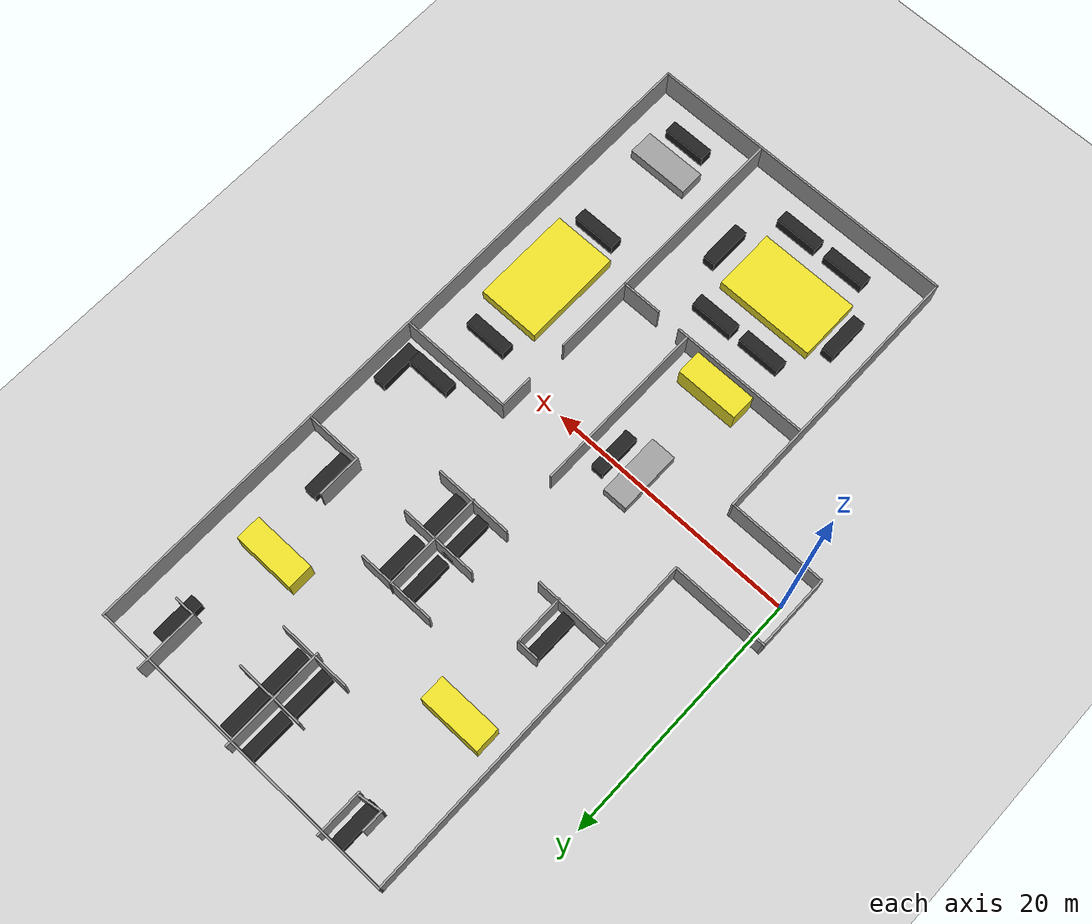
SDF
<sdf version="1.6">
 <world name="default">
  <light name="sun" type="directional">
   <pose>0 0 10 0 -0 0</pose>
   <diffuse>0.8 0.8 0.8 1</diffuse>
   <specular>0.2 0.2 0.2 1</specular>
   <attenuation>
    <range>1000</range>
    <constant>0.9</constant>
    <linear>0.01</linear>
    <quadratic>0.001</quadratic>
   </attenuation>
   <direction>-0.5 0.1 -0.9</direction>
  </light>
  <model name="ground_plane">
   <static>1</static>
   <link name="link">
    <collision name="collision">
     <geometry><plane><normal>0 0 1</normal><size>100 100</size></plane></geometry>
     <surface>
      <contact><collide_bitmask>65535</collide_bitmask></contact>
      <friction><ode><mu>100</mu><mu2>50</mu2></ode></friction>
     </surface>
    </collision>
    <visual name="visual">
     <cast_shadows>0</cast_shadows>
     <geometry><plane><normal>0 0 1</normal><size>100 100</size></plane></geometry>
     <material>
      <script><uri>file://media/materials/scripts/gazebo.material</uri><name>Gazebo/Grey</name></script>
     </material>
    </visual>
   </link>
  </model>
  <gravity>0 0 -9.8</gravity>
  <magnetic_field>6e-06 2.3e-05 -4.2e-05</magnetic_field>
  <atmosphere type="adiabatic"/>
  <physics name="default_physics" default="0" type="ode">
   <max_step_size>0.001</max_step_size>
   <real_time_factor>1</real_time_factor>
   <real_time_update_rate>1000</real_time_update_rate>
  </physics>
  <scene><ambient>0.4 0.4 0.4 1</ambient><background>0.7 0.7 0.7 1</background><shadows>1</shadows></scene>
  <audio><device>default</device></audio>
  <spherical_coordinates>
   <surface_model>EARTH_WGS84</surface_model>
   <latitude_deg>0</latitude_deg>
   <longitude_deg>0</longitude_deg>
   <elevation>0</elevation>
   <heading_deg>0</heading_deg>
  </spherical_coordinates>
  <model name="office_1">
   <pose>15.4743 3.41032 0 0 -0 0</pose>
   <link name="Wall_0">
    <collision name="Wall_0_Collision">
     <geometry><box><size>7.75 0.15 2.5</size></box></geometry>
     <pose>0 0 1.25 0 -0 0</pose>
    </collision>
    <visual name="Wall_0_Visual">
     <pose>0 0 1.25 0 -0 0</pose>
     <geometry><box><size>7.75 0.15 2.5</size></box></geometry>
     <material>
      <script><uri>file://media/materials/scripts/gazebo.material</uri><name>Gazebo/Grey</name></script>
      <ambient>1 1 1 1</ambient>
     </material>
     <meta><layer>0</layer></meta>
    </visual>
    <pose>-12.5043 -5.95032 0 0 -0 0</pose>
   </link>
   <link name="Wall_10">
    <collision name="Wall_10_Collision">
     <geometry><box><size>6 0.15 2.5</size></box></geometry>
     <pose>0 0 1.25 0 -0 0</pose>
    </collision>
    <visual name="Wall_10_Visual">
     <pose>0 0 1.25 0 -0 0</pose>
     <geometry><box><size>6 0.15 2.5</size></box></geometry>
     <material>
      <script><uri>file://media/materials/scripts/gazebo.material</uri><name>Gazebo/Grey</name></script>
      <ambient>1 1 1 1</ambient>
     </material>
     <meta><layer>0</layer></meta>
    </visual>
    <pose>-16.3956 -3.00177 0 0 -0 -1.5708</pose>
   </link>
   <link name="Wall_2">
    <collision name="Wall_2_Collision">
     <geometry><box><size>22 0.15 2.5</size></box></geometry>
     <pose>0 0 1.25 0 -0 0</pose>
    </collision>
    <visual name="Wall_2_Visual">
     <pose>0 0 1.25 0 -0 0</pose>
     <geometry><box><size>22 0.15 2.5</size></box></geometry>
     <material>
      <script><uri>file://media/materials/scripts/gazebo.material</uri><name>Gazebo/Grey</name></script>
      <ambient>1 1 1 1</ambient>
     </material>
     <meta><layer>0</layer></meta>
    </visual>
    <pose>-8.70435 -16.8753 0 0 -0 -1.5708</pose>
   </link>
   <link name="Wall_3">
    <collision name="Wall_3_Collision">
     <geometry><box><size>25.25 0.15 2.5</size></box></geometry>
     <pose>0 0 1.25 0 -0 0</pose>
    </collision>
    <visual name="Wall_3_Visual">
     <pose>0 0 1.25 0 -0 0</pose>
     <geometry><box><size>25.25 0.15 2.5</size></box></geometry>
     <material>
      <script><uri>file://media/materials/scripts/gazebo.material</uri><name>Gazebo/Grey</name></script>
      <ambient>1 1 1 1</ambient>
     </material>
     <meta><layer>0</layer></meta>
    </visual>
    <pose>3.84565 -27.8003 0 0 -0 0</pose>
   </link>
   <link name="Wall_5">
    <collision name="Wall_5_Collision">
     <geometry><box><size>55.75 0.15 2.5</size></box></geometry>
     <pose>0 0 1.25 0 -0 0</pose>
    </collision>
    <visual name="Wall_5_Visual">
     <pose>0 0 1.25 0 -0 0</pose>
     <geometry><box><size>55.75 0.15 2.5</size></box></geometry>
     <material>
      <script><uri>file://media/materials/scripts/gazebo.material</uri><name>Gazebo/Grey</name></script>
      <ambient>1 1 1 1</ambient>
     </material>
     <meta><layer>0</layer></meta>
    </visual>
    <pose>16.3957 -0.000322 0 0 -0 1.5708</pose>
   </link>
   <link name="Wall_6">
    <collision name="Wall_6_Collision">
     <geometry><box><size>25.5 0.15 2.5</size></box></geometry>
     <pose>0 0 1.25 0 -0 0</pose>
    </collision>
    <visual name="Wall_6_Visual">
     <pose>0 0 1.25 0 -0 0</pose>
     <geometry><box><size>25.5 0.15 2.5</size></box></geometry>
     <material>
      <script><uri>file://media/materials/scripts/gazebo.material</uri><name>Gazebo/Grey</name></script>
      <ambient>1 1 1 1</ambient>
     </material>
     <meta><layer>0</layer></meta>
    </visual>
    <pose>3.72065 27.7997 0 0 -0 3.14159</pose>
   </link>
   <link name="Wall_7">
    <collision name="Wall_7_Collision">
     <geometry><box><size>28.0269 0.15 2.5</size></box></geometry>
     <pose>0 0 1.25 0 -0 0</pose>
    </collision>
    <visual name="Wall_7_Visual">
     <pose>0 0 1.25 0 -0 0</pose>
     <geometry><box><size>28.0269 0.15 2.5</size></box></geometry>
     <material>
      <script><uri>file://media/materials/scripts/gazebo.material</uri><name>Gazebo/Grey</name></script>
      <ambient>1 1 1 1</ambient>
     </material>
     <meta><layer>0</layer></meta>
    </visual>
    <pose>-8.88935 13.8617 0 0 -0 -1.56613</pose>
   </link>
   <link name="Wall_8">
    <collision name="Wall_8_Collision">
     <geometry><box><size>7.7213 0.15 2.5</size></box></geometry>
     <pose>0 0 1.25 0 -0 0</pose>
    </collision>
    <visual name="Wall_8_Visual">
     <pose>0 0 1.25 0 -0 0</pose>
     <geometry><box><size>7.7213 0.15 2.5</size></box></geometry>
     <material>
      <script><uri>file://media/materials/scripts/gazebo.material</uri><name>Gazebo/Grey</name></script>
      <ambient>1 1 1 1</ambient>
     </material>
     <meta><layer>0</layer></meta>
    </visual>
    <pose>-12.61 -0.076547 0 0 -0 -3.14153</pose>
   </link>
   <static>1</static>
  </model>
  <model name="office_2">
   <pose>19.223 3.91729 0 0 -0 0</pose>
   <link name="Wall_11">
    <collision name="Wall_11_Collision">
     <geometry><box><size>6.5 0.15 2.5</size></box></geometry>
     <pose>0 0 1.25 0 -0 0</pose>
    </collision>
    <visual name="Wall_11_Visual">
     <pose>0 0 1.25 0 -0 0</pose>
     <geometry><box><size>6.5 0.15 2.5</size></box></geometry>
     <material>
      <script><uri>file://media/materials/scripts/gazebo.material</uri><name>Gazebo/Grey</name></script>
      <ambient>1 1 1 1</ambient>
     </material>
     <meta><layer>0</layer></meta>
    </visual>
    <pose>3.61683 -10.3722 0 0 -0 1.5708</pose>
   </link>
   <link name="Wall_13">
    <collision name="Wall_13_Collision">
     <geometry><box><size>2.75 0.15 2.5</size></box></geometry>
     <pose>0 0 1.25 0 -0 0</pose>
    </collision>
    <visual name="Wall_13_Visual">
     <pose>0 0 1.25 0 -0 0</pose>
     <geometry><box><size>2.75 0.15 2.5</size></box></geometry>
     <material>
      <script><uri>file://media/materials/scripts/gazebo.material</uri><name>Gazebo/Grey</name></script>
      <ambient>1 1 1 1</ambient>
     </material>
     <meta><layer>0</layer></meta>
    </visual>
    <pose>3.64403 -2.41016 0 0 -0 1.5708</pose>
   </link>
   <link name="Wall_14">
    <collision name="Wall_14_Collision">
     <geometry><box><size>9 0.15 2.5</size></box></geometry>
     <pose>0 0 1.25 0 -0 0</pose>
    </collision>
    <visual name="Wall_14_Visual">
     <pose>0 0 1.25 0 -0 0</pose>
     <geometry><box><size>9 0.15 2.5</size></box></geometry>
     <material>
      <script><uri>file://media/materials/scripts/gazebo.material</uri><name>Gazebo/Grey</name></script>
      <ambient>1 1 1 1</ambient>
     </material>
     <meta><layer>0</layer></meta>
    </visual>
    <pose>8.06904 -1.11016 0 0 -0 0</pose>
   </link>
   <link name="Wall_20">
    <collision name="Wall_20_Collision">
     <geometry><box><size>14 0.15 2.5</size></box></geometry>
     <pose>0 0 1.25 0 -0 0</pose>
    </collision>
    <visual name="Wall_20_Visual">
     <pose>0 0 1.25 0 -0 0</pose>
     <geometry><box><size>14 0.15 2.5</size></box></geometry>
     <material>
      <script><uri>file://media/materials/scripts/gazebo.material</uri><name>Gazebo/Grey</name></script>
      <ambient>1 1 1 1</ambient>
     </material>
     <meta><layer>0</layer></meta>
    </visual>
    <pose>-2.23045 -6.54514 0 0 -0 1.5708</pose>
   </link>
   <link name="Wall_29">
    <collision name="Wall_29_Collision">
     <geometry><box><size>6 0.15 2.5</size></box></geometry>
     <pose>0 0 1.25 0 -0 0</pose>
    </collision>
    <visual name="Wall_29_Visual">
     <pose>0 0 1.25 0 -0 0</pose>
     <geometry><box><size>6 0.15 2.5</size></box></geometry>
     <material>
      <script><uri>file://media/materials/scripts/gazebo.material</uri><name>Gazebo/Grey</name></script>
      <ambient>1 1 1 1</ambient>
     </material>
     <meta><layer>0</layer></meta>
    </visual>
    <pose>-9.61448 6.29314 0 0 -0 0</pose>
   </link>
   <link name="Wall_3">
    <collision name="Wall_3_Collision">
     <geometry><box><size>11 0.15 2.5</size></box></geometry>
     <pose>0 0 1.25 0 -0 0</pose>
    </collision>
    <visual name="Wall_3_Visual">
     <pose>0 0 1.25 0 -0 0</pose>
     <geometry><box><size>11 0.15 2.5</size></box></geometry>
     <material>
      <script><uri>file://media/materials/scripts/gazebo.material</uri><name>Gazebo/Grey</name></script>
      <ambient>1 1 1 1</ambient>
     </material>
     <meta><layer>0</layer></meta>
    </visual>
    <pose>-6.89347 -13.5267 0 0 -0 0</pose>
   </link>
   <link name="Wall_32">
    <collision name="Wall_32_Collision">
     <geometry><box><size>4 0.15 2.5</size></box></geometry>
     <pose>0 0 1.25 0 -0 0</pose>
    </collision>
    <visual name="Wall_32_Visual">
     <pose>0 0 1.25 0 -0 0</pose>
     <geometry><box><size>4 0.15 2.5</size></box></geometry>
     <material>
      <script><uri>file://media/materials/scripts/gazebo.material</uri><name>Gazebo/Grey</name></script>
      <ambient>1 1 1 1</ambient>
     </material>
     <meta><layer>0</layer></meta>
    </visual>
    <pose>-8.37317 8.17348 0 0 -0 1.5708</pose>
   </link>
   <link name="Wall_33">
    <collision name="Wall_33_Collision">
     <geometry><box><size>1.75 0.15 2.5</size></box></geometry>
     <pose>0 0 1.25 0 -0 0</pose>
    </collision>
    <visual name="Wall_33_Visual">
     <pose>0 0 1.25 0 -0 0</pose>
     <geometry><box><size>1.75 0.15 2.5</size></box></geometry>
     <material>
      <script><uri>file://media/materials/scripts/gazebo.material</uri><name>Gazebo/Grey</name></script>
      <ambient>1 1 1 1</ambient>
     </material>
     <meta><layer>0</layer></meta>
    </visual>
    <pose>-9.17316 10.0985 0 0 -0 3.14159</pose>
   </link>
   <link name="Wall_47">
    <collision name="Wall_47_Collision">
     <geometry><box><size>3.75 0.15 2.5</size></box></geometry>
     <pose>0 0 1.25 0 -0 0</pose>
    </collision>
    <visual name="Wall_47_Visual">
     <pose>0 0 1.25 0 -0 0</pose>
     <geometry><box><size>3.75 0.15 2.5</size></box></geometry>
     <material>
      <script><uri>file://media/materials/scripts/gazebo.material</uri><name>Gazebo/Grey</name></script>
      <ambient>1 1 1 1</ambient>
     </material>
     <meta><layer>0</layer></meta>
    </visual>
    <pose>-7.63999 25.7901 0 0 -0 -1.5708</pose>
   </link>
   <link name="Wall_48">
    <collision name="Wall_48_Collision">
     <geometry><box><size>2.05601 0.15 2.5</size></box></geometry>
     <pose>0 0 1.25 0 -0 0</pose>
    </collision>
    <visual name="Wall_48_Visual">
     <pose>0 0 1.25 0 -0 0</pose>
     <geometry><box><size>2.05601 0.15 2.5</size></box></geometry>
     <material>
      <script><uri>file://media/materials/scripts/gazebo.material</uri><name>Gazebo/Grey</name></script>
      <ambient>1 1 1 1</ambient>
     </material>
     <meta><layer>0</layer></meta>
    </visual>
    <pose>-8.5823 23.9901 0 0 -0 -2.9917</pose>
   </link>
   <link name="Wall_49">
    <collision name="Wall_49_Collision">
     <geometry><box><size>1.75 0.15 2.5</size></box></geometry>
     <pose>0 0 1.25 0 -0 0</pose>
    </collision>
    <visual name="Wall_49_Visual">
     <pose>0 0 1.25 0 -0 0</pose>
     <geometry><box><size>1.75 0.15 2.5</size></box></geometry>
     <material>
      <script><uri>file://media/materials/scripts/gazebo.material</uri><name>Gazebo/Grey</name></script>
      <ambient>1 1 1 1</ambient>
     </material>
     <meta><layer>0</layer></meta>
    </visual>
    <pose>-9.52462 24.6478 0 0 -0 1.5708</pose>
   </link>
   <link name="Wall_57">
    <collision name="Wall_57_Collision">
     <geometry><box><size>5 0.15 2.5</size></box></geometry>
     <pose>0 0 1.25 0 -0 0</pose>
    </collision>
    <visual name="Wall_57_Visual">
     <pose>0 0 1.25 0 -0 0</pose>
     <geometry><box><size>5 0.15 2.5</size></box></geometry>
     <material>
      <script><uri>file://media/materials/scripts/gazebo.material</uri><name>Gazebo/Grey</name></script>
      <ambient>1 1 1 1</ambient>
     </material>
     <meta><layer>0</layer></meta>
    </visual>
    <pose>8.35473 25.7222 0 0 -0 -1.5708</pose>
   </link>
   <link name="Wall_58">
    <collision name="Wall_58_Collision">
     <geometry><box><size>1.75 0.15 2.5</size></box></geometry>
     <pose>0 0 1.25 0 -0 0</pose>
    </collision>
    <visual name="Wall_58_Visual">
     <pose>0 0 1.25 0 -0 0</pose>
     <geometry><box><size>1.75 0.15 2.5</size></box></geometry>
     <material>
      <script><uri>file://media/materials/scripts/gazebo.material</uri><name>Gazebo/Grey</name></script>
      <ambient>1 1 1 1</ambient>
     </material>
     <meta><layer>0</layer></meta>
    </visual>
    <pose>9.15472 23.2972 0 0 -0 0</pose>
   </link>
   <link name="Wall_60">
    <collision name="Wall_60_Collision">
     <geometry><box><size>8.25 0.15 2.5</size></box></geometry>
     <pose>0 0 1.25 0 -0 0</pose>
    </collision>
    <visual name="Wall_60_Visual">
     <pose>0 0 1.25 0 -0 0</pose>
     <geometry><box><size>8.25 0.15 2.5</size></box></geometry>
     <material>
      <script><uri>file://media/materials/scripts/gazebo.material</uri><name>Gazebo/Grey</name></script>
      <ambient>1 1 1 1</ambient>
     </material>
     <meta><layer>0</layer></meta>
    </visual>
    <pose>0.578927 23.6502 0 0 -0 -1.5708</pose>
   </link>
   <link name="Wall_65">
    <collision name="Wall_65_Collision">
     <geometry><box><size>5.75 0.15 2.5</size></box></geometry>
     <pose>0 0 1.25 0 -0 0</pose>
    </collision>
    <visual name="Wall_65_Visual">
     <pose>0 0 1.25 0 -0 0</pose>
     <geometry><box><size>5.75 0.15 2.5</size></box></geometry>
     <material>
      <script><uri>file://media/materials/scripts/gazebo.material</uri><name>Gazebo/Grey</name></script>
      <ambient>1 1 1 1</ambient>
     </material>
     <meta><layer>0</layer></meta>
    </visual>
    <pose>0.659823 19.8318 0 0 -0 0</pose>
   </link>
   <link name="Wall_69">
    <collision name="Wall_69_Collision">
     <geometry><box><size>5.5 0.15 2.5</size></box></geometry>
     <pose>0 0 1.25 0 -0 0</pose>
    </collision>
    <visual name="Wall_69_Visual">
     <pose>0 0 1.25 0 -0 0</pose>
     <geometry><box><size>5.5 0.15 2.5</size></box></geometry>
     <material>
      <script><uri>file://media/materials/scripts/gazebo.material</uri><name>Gazebo/Grey</name></script>
      <ambient>1 1 1 1</ambient>
     </material>
     <meta><layer>0</layer></meta>
    </visual>
    <pose>0.961778 23.5321 0 0 -0 0</pose>
   </link>
   <link name="Wall_71">
    <collision name="Wall_71_Collision">
     <geometry><box><size>8 0.15 2.5</size></box></geometry>
     <pose>0 0 1.25 0 -0 0</pose>
    </collision>
    <visual name="Wall_71_Visual">
     <pose>0 0 1.25 0 -0 0</pose>
     <geometry><box><size>8 0.15 2.5</size></box></geometry>
     <material>
      <script><uri>file://media/materials/scripts/gazebo.material</uri><name>Gazebo/Grey</name></script>
      <ambient>1 1 1 1</ambient>
     </material>
     <meta><layer>0</layer></meta>
    </visual>
    <pose>0.422198 9.09895 0 0 -0 -1.5708</pose>
   </link>
   <link name="Wall_73">
    <collision name="Wall_73_Collision">
     <geometry><box><size>6.25 0.15 2.5</size></box></geometry>
     <pose>0 0 1.25 0 -0 0</pose>
    </collision>
    <visual name="Wall_73_Visual">
     <pose>0 0 1.25 0 -0 0</pose>
     <geometry><box><size>6.25 0.15 2.5</size></box></geometry>
     <material>
      <script><uri>file://media/materials/scripts/gazebo.material</uri><name>Gazebo/Grey</name></script>
      <ambient>1 1 1 1</ambient>
     </material>
     <meta><layer>0</layer></meta>
    </visual>
    <pose>0.373353 5.22741 0 0 -0 0</pose>
   </link>
   <link name="Wall_8">
    <collision name="Wall_8_Collision">
     <geometry><box><size>3.25 0.15 2.5</size></box></geometry>
     <pose>0 0 1.25 0 -0 0</pose>
    </collision>
    <visual name="Wall_8_Visual">
     <pose>0 0 1.25 0 -0 0</pose>
     <geometry><box><size>3.25 0.15 2.5</size></box></geometry>
     <material>
      <script><uri>file://media/materials/scripts/gazebo.material</uri><name>Gazebo/Grey</name></script>
      <ambient>1 1 1 1</ambient>
     </material>
     <meta><layer>0</layer></meta>
    </visual>
    <pose>2.06683 -13.5472 0 0 -0 0</pose>
   </link>
   <link name="Wall_82">
    <collision name="Wall_82_Collision">
     <geometry><box><size>6.25 0.15 2.5</size></box></geometry>
     <pose>0 0 1.25 0 -0 0</pose>
    </collision>
    <visual name="Wall_82_Visual">
     <pose>0 0 1.25 0 -0 0</pose>
     <geometry><box><size>6.25 0.15 2.5</size></box></geometry>
     <material>
      <script><uri>file://media/materials/scripts/gazebo.material</uri><name>Gazebo/Grey</name></script>
      <ambient>1 1 1 1</ambient>
     </material>
     <meta><layer>0</layer></meta>
    </visual>
    <pose>0.163686 8.82451 0 0 -0 0</pose>
   </link>
   <link name="Wall_84">
    <collision name="Wall_84_Collision">
     <geometry><box><size>6.25 0.15 2.5</size></box></geometry>
     <pose>0 0 1.25 0 -0 0</pose>
    </collision>
    <visual name="Wall_84_Visual">
     <pose>0 0 1.25 0 -0 0</pose>
     <geometry><box><size>6.25 0.15 2.5</size></box></geometry>
     <material>
      <script><uri>file://media/materials/scripts/gazebo.material</uri><name>Gazebo/Grey</name></script>
      <ambient>1 1 1 1</ambient>
     </material>
     <meta><layer>0</layer></meta>
    </visual>
    <pose>0.015128 12.9567 0 0 -0 0</pose>
   </link>
   <link name="Wall_89">
    <collision name="Wall_89_Collision">
     <geometry><box><size>4.5 0.15 2.5</size></box></geometry>
     <pose>0 0 1.25 0 -0 0</pose>
    </collision>
    <visual name="Wall_89_Visual">
     <pose>0 0 1.25 0 -0 0</pose>
     <geometry><box><size>4.5 0.15 2.5</size></box></geometry>
     <material>
      <script><uri>file://media/materials/scripts/gazebo.material</uri><name>Gazebo/Grey</name></script>
      <ambient>1 1 1 1</ambient>
     </material>
     <meta><layer>0</layer></meta>
    </visual>
    <pose>10.3645 8.4266 0 0 -0 0</pose>
   </link>
   <link name="Wall_9">
    <collision name="Wall_9_Collision">
     <geometry><box><size>14.75 0.15 2.5</size></box></geometry>
     <pose>0 0 1.25 0 -0 0</pose>
    </collision>
    <visual name="Wall_9_Visual">
     <pose>0 0 1.25 0 -0 0</pose>
     <geometry><box><size>14.75 0.15 2.5</size></box></geometry>
     <material>
      <script><uri>file://media/materials/scripts/gazebo.material</uri><name>Gazebo/Grey</name></script>
      <ambient>1 1 1 1</ambient>
     </material>
     <meta><layer>0</layer></meta>
    </visual>
    <pose>3.61683 -20.8472 0 0 -0 -1.5708</pose>
   </link>
   <link name="Wall_91">
    <collision name="Wall_91_Collision">
     <geometry><box><size>3.5 0.15 2.5</size></box></geometry>
     <pose>0 0 1.25 0 -0 0</pose>
    </collision>
    <visual name="Wall_91_Visual">
     <pose>0 0 1.25 0 -0 0</pose>
     <geometry><box><size>3.5 0.15 2.5</size></box></geometry>
     <material>
      <script><uri>file://media/materials/scripts/gazebo.material</uri><name>Gazebo/Grey</name></script>
      <ambient>1 1 1 1</ambient>
     </material>
     <meta><layer>0</layer></meta>
    </visual>
    <pose>8.18948 10.1016 0 0 -0 1.5708</pose>
   </link>
   <static>1</static>
  </model>
  <model name="cabinet">
   <pose>10.4609 19.9803 0.99882 0 0.000472 2e-06</pose>
   <link name="link">
    <inertial>
     <mass>1</mass>
     <inertia>
      <ixx>0.166667</ixx>
      <ixy>0</ixy>
      <ixz>0</ixz>
      <iyy>0.166667</iyy>
      <iyz>0</iyz>
      <izz>0.166667</izz>
     </inertia>
    </inertial>
    <collision name="collision"><geometry><box><size>5 2 2</size></box></geometry></collision>
    <visual name="visual">
     <geometry><box><size>5 2 2</size></box></geometry>
     <material>
      <script><name>Gazebo/Yellow</name><uri>file://media/materials/scripts/gazebo.material</uri></script>
     </material>
    </visual>
   </link>
  </model>
  <model name="unit_box_21">
   <pose>27.716 -6.84845 0.483136 0.004219 -0 0</pose>
   <link name="link">
    <inertial>
     <mass>1</mass>
     <inertia>
      <ixx>0.166667</ixx>
      <ixy>0</ixy>
      <ixz>0</ixz>
      <iyy>0.166667</iyy>
      <iyz>0</iyz>
      <izz>0.166667</izz>
     </inertia>
    </inertial>
    <collision name="collision"><geometry><box><size>5 8 1</size></box></geometry></collision>
    <visual name="visual">
     <geometry><box><size>5 8 1</size></box></geometry>
     <material>
      <script><name>Gazebo/Yellow</name><uri>file://media/materials/scripts/gazebo.material</uri></script>
     </material>
    </visual>
   </link>
  </model>
  <model name="cabinet_clone">
   <pose>26.9352 20.6379 0.99882 0 0.000472 -2e-06</pose>
   <link name="link">
    <inertial>
     <mass>1</mass>
     <inertia>
      <ixx>0.166667</ixx>
      <ixy>0</ixy>
      <ixz>0</ixz>
      <iyy>0.166667</iyy>
      <iyz>0</iyz>
      <izz>0.166667</izz>
     </inertia>
    </inertial>
    <collision name="collision"><geometry><box><size>5 2 2</size></box></geometry></collision>
    <visual name="visual">
     <geometry><box><size>5 2 2</size></box></geometry>
     <material>
      <script><name>Gazebo/Yellow</name><uri>file://media/materials/scripts/gazebo.material</uri></script>
     </material>
    </visual>
   </link>
  </model>
  <model name="unit_box_21_clone">
   <pose>14.3345 -17.4415 0.483136 0.004219 -0 -1.5708</pose>
   <link name="link">
    <inertial>
     <mass>1</mass>
     <inertia>
      <ixx>0.166667</ixx>
      <ixy>0</ixy>
      <ixz>0</ixz>
      <iyy>0.166667</iyy>
      <iyz>0</iyz>
      <izz>0.166667</izz>
     </inertia>
    </inertial>
    <collision name="collision"><geometry><box><size>5 8 1</size></box></geometry></collision>
    <visual name="visual">
     <geometry><box><size>5 8 1</size></box></geometry>
     <material>
      <script><name>Gazebo/Yellow</name><uri>file://media/materials/scripts/gazebo.material</uri></script>
     </material>
    </visual>
   </link>
  </model>
  <model name="unit_box_7">
   <pose>13.0472 -0.299859 0.497878 -0.000849 -0 -0</pose>
   <link name="link">
    <inertial>
     <mass>1</mass>
     <inertia>
      <ixx>0.166667</ixx>
      <ixy>0</ixy>
      <ixz>0</ixz>
      <iyy>0.166667</iyy>
      <iyz>0</iyz>
      <izz>0.166667</izz>
     </inertia>
    </inertial>
    <collision name="collision"><geometry><box><size>2 5 1</size></box></geometry></collision>
    <visual name="visual">
     <geometry><box><size>2 5 1</size></box></geometry>
     <material>
      <script><name>Gazebo/Grey</name><uri>file://media/materials/scripts/gazebo.material</uri></script>
     </material>
    </visual>
   </link>
  </model>
  <model name="cabinet_clone_clone">
   <pose>13.2924 -8.41821 0.99882 0 0.000472 -2e-06</pose>
   <link name="link">
    <inertial>
     <mass>1</mass>
     <inertia>
      <ixx>0.166667</ixx>
      <ixy>0</ixy>
      <ixz>0</ixz>
      <iyy>0.166667</iyy>
      <iyz>0</iyz>
      <izz>0.166667</izz>
     </inertia>
    </inertial>
    <collision name="collision"><geometry><box><size>5 2 2</size></box></geometry></collision>
    <visual name="visual">
     <geometry><box><size>5 2 2</size></box></geometry>
     <material>
      <script><name>Gazebo/Yellow</name><uri>file://media/materials/scripts/gazebo.material</uri></script>
     </material>
    </visual>
   </link>
  </model>
  <model name="unit_box_clone">
   <pose>20.7214 15.0024 0.499937 -5.1e-05 0 0</pose>
   <link name="link">
    <inertial>
     <mass>1</mass>
     <inertia>
      <ixx>0.166667</ixx>
      <ixy>0</ixy>
      <ixz>0</ixz>
      <iyy>0.166667</iyy>
      <iyz>0</iyz>
      <izz>0.166667</izz>
     </inertia>
    </inertial>
    <collision name="collision"><geometry><box><size>2 2.5 1</size></box></geometry></collision>
    <visual name="visual">
     <geometry><box><size>1 3.5 1</size></box></geometry>
     <material>
      <script><name>Gazebo/Black</name><uri>file://media/materials/scripts/gazebo.material</uri></script>
     </material>
    </visual>
   </link>
  </model>
  <model name="unit_box_clone_clone">
   <pose>20.7209 11 0.499986 0 -1.4e-05 -2e-06</pose>
   <link name="link">
    <inertial>
     <mass>1</mass>
     <inertia>
      <ixx>0.166667</ixx>
      <ixy>0</ixy>
      <ixz>0</ixz>
      <iyy>0.166667</iyy>
      <iyz>0</iyz>
      <izz>0.166667</izz>
     </inertia>
    </inertial>
    <collision name="collision"><geometry><box><size>2 2.5 1</size></box></geometry></collision>
    <visual name="visual">
     <geometry><box><size>1 3.5 1</size></box></geometry>
     <material>
      <script><name>Gazebo/Black</name><uri>file://media/materials/scripts/gazebo.material</uri></script>
     </material>
    </visual>
   </link>
  </model>
  <model name="unit_box_clone_clone_0">
   <pose>18.5688 14.9472 0.499937 -5.1e-05 0 0.000136</pose>
   <link name="link">
    <inertial>
     <mass>1</mass>
     <inertia>
      <ixx>0.166667</ixx>
      <ixy>0</ixy>
      <ixz>0</ixz>
      <iyy>0.166667</iyy>
      <iyz>0</iyz>
      <izz>0.166667</izz>
     </inertia>
    </inertial>
    <collision name="collision"><geometry><box><size>2 2.5 1</size></box></geometry></collision>
    <visual name="visual">
     <geometry><box><size>1 3.5 1</size></box></geometry>
     <material>
      <script><name>Gazebo/Black</name><uri>file://media/materials/scripts/gazebo.material</uri></script>
     </material>
    </visual>
   </link>
  </model>
  <model name="unit_box_clone_clone_1">
   <pose>18.5701 11.0826 0.499937 -5.1e-05 0 5e-06</pose>
   <link name="link">
    <inertial>
     <mass>1</mass>
     <inertia>
      <ixx>0.166667</ixx>
      <ixy>0</ixy>
      <ixz>0</ixz>
      <iyy>0.166667</iyy>
      <iyz>0</iyz>
      <izz>0.166667</izz>
     </inertia>
    </inertial>
    <collision name="collision"><geometry><box><size>2 2.5 1</size></box></geometry></collision>
    <visual name="visual">
     <geometry><box><size>1 3.5 1</size></box></geometry>
     <material>
      <script><name>Gazebo/Black</name><uri>file://media/materials/scripts/gazebo.material</uri></script>
     </material>
    </visual>
   </link>
  </model>
  <model name="unit_box_clone_clone_2">
   <pose>20.8779 29.2737 0.499937 -5.1e-05 -0 -9.3e-05</pose>
   <link name="link">
    <inertial>
     <mass>1</mass>
     <inertia>
      <ixx>0.166667</ixx>
      <ixy>0</ixy>
      <ixz>0</ixz>
      <iyy>0.166667</iyy>
      <iyz>0</iyz>
      <izz>0.166667</izz>
     </inertia>
    </inertial>
    <collision name="collision"><geometry><box><size>2 2.5 1</size></box></geometry></collision>
    <visual name="visual">
     <geometry><box><size>1 3.5 1</size></box></geometry>
     <material>
      <script><name>Gazebo/Black</name><uri>file://media/materials/scripts/gazebo.material</uri></script>
     </material>
    </visual>
   </link>
  </model>
  <model name="unit_box_clone_clone_3">
   <pose>20.8769 25.738 0.499937 -5.1e-05 -0 -1e-06</pose>
   <link name="link">
    <inertial>
     <mass>1</mass>
     <inertia>
      <ixx>0.166667</ixx>
      <ixy>0</ixy>
      <ixz>0</ixz>
      <iyy>0.166667</iyy>
      <iyz>0</iyz>
      <izz>0.166667</izz>
     </inertia>
    </inertial>
    <collision name="collision"><geometry><box><size>2 2.5 1</size></box></geometry></collision>
    <visual name="visual">
     <geometry><box><size>1 3.5 1</size></box></geometry>
     <material>
      <script><name>Gazebo/Black</name><uri>file://media/materials/scripts/gazebo.material</uri></script>
     </material>
    </visual>
   </link>
  </model>
  <model name="unit_box_clone_clone_4">
   <pose>18.7261 29.4014 0.499937 5.1e-05 -0 7.9e-05</pose>
   <link name="link">
    <inertial>
     <mass>1</mass>
     <inertia>
      <ixx>0.166667</ixx>
      <ixy>0</ixy>
      <ixz>0</ixz>
      <iyy>0.166667</iyy>
      <iyz>0</iyz>
      <izz>0.166667</izz>
     </inertia>
    </inertial>
    <collision name="collision"><geometry><box><size>2 2.5 1</size></box></geometry></collision>
    <visual name="visual">
     <geometry><box><size>1 3.5 1</size></box></geometry>
     <material>
      <script><name>Gazebo/Black</name><uri>file://media/materials/scripts/gazebo.material</uri></script>
     </material>
    </visual>
   </link>
  </model>
  <model name="unit_box_clone_clone_5">
   <pose>18.7263 25.6587 0.499937 5.1e-05 -0 0</pose>
   <link name="link">
    <inertial>
     <mass>1</mass>
     <inertia>
      <ixx>0.166667</ixx>
      <ixy>0</ixy>
      <ixz>0</ixz>
      <iyy>0.166667</iyy>
      <iyz>0</iyz>
      <izz>0.166667</izz>
     </inertia>
    </inertial>
    <collision name="collision"><geometry><box><size>2 2.5 1</size></box></geometry></collision>
    <visual name="visual">
     <geometry><box><size>1 3.5 1</size></box></geometry>
     <material>
      <script><name>Gazebo/Black</name><uri>file://media/materials/scripts/gazebo.material</uri></script>
     </material>
    </visual>
   </link>
  </model>
  <model name="unit_box_clone_clone_6">
   <pose>28.5984 28.0755 0.499937 5.1e-05 -0 4.2e-05</pose>
   <link name="link">
    <inertial>
     <mass>1</mass>
     <inertia>
      <ixx>0.166667</ixx>
      <ixy>0</ixy>
      <ixz>0</ixz>
      <iyy>0.166667</iyy>
      <iyz>0</iyz>
      <izz>0.166667</izz>
     </inertia>
    </inertial>
    <collision name="collision"><geometry><box><size>2 2.5 1</size></box></geometry></collision>
    <visual name="visual">
     <geometry><box><size>1 3.5 1</size></box></geometry>
     <material>
      <script><name>Gazebo/Black</name><uri>file://media/materials/scripts/gazebo.material</uri></script>
     </material>
    </visual>
   </link>
  </model>
  <model name="unit_box_clone_clone_7">
   <pose>28.488 14.2364 0.499937 -5.1e-05 -0 4.9e-05</pose>
   <link name="link">
    <inertial>
     <mass>1</mass>
     <inertia>
      <ixx>0.166667</ixx>
      <ixy>0</ixy>
      <ixz>0</ixz>
      <iyy>0.166667</iyy>
      <iyz>0</iyz>
      <izz>0.166667</izz>
     </inertia>
    </inertial>
    <collision name="collision"><geometry><box><size>2 2.5 1</size></box></geometry></collision>
    <visual name="visual">
     <geometry><box><size>1 3.5 1</size></box></geometry>
     <material>
      <script><name>Gazebo/Black</name><uri>file://media/materials/scripts/gazebo.material</uri></script>
     </material>
    </visual>
   </link>
  </model>
  <model name="unit_box_clone_clone_8">
   <pose>9.77445 12.0594 0.499937 -5.1e-05 -0 -0.000203</pose>
   <link name="link">
    <inertial>
     <mass>1</mass>
     <inertia>
      <ixx>0.166667</ixx>
      <ixy>0</ixy>
      <ixz>0</ixz>
      <iyy>0.166667</iyy>
      <iyz>0</iyz>
      <izz>0.166667</izz>
     </inertia>
    </inertial>
    <collision name="collision"><geometry><box><size>2 2.5 1</size></box></geometry></collision>
    <visual name="visual">
     <geometry><box><size>1 3.5 1</size></box></geometry>
     <material>
      <script><name>Gazebo/Black</name><uri>file://media/materials/scripts/gazebo.material</uri></script>
     </material>
    </visual>
   </link>
  </model>
  <model name="unit_box_clone_clone_9">
   <pose>10.5078 29.4522 0.499937 5.1e-05 0 -2.8e-05</pose>
   <link name="link">
    <inertial>
     <mass>1</mass>
     <inertia>
      <ixx>0.166667</ixx>
      <ixy>0</ixy>
      <ixz>0</ixz>
      <iyy>0.166667</iyy>
      <iyz>0</iyz>
      <izz>0.166667</izz>
     </inertia>
    </inertial>
    <collision name="collision"><geometry><box><size>2 2.5 1</size></box></geometry></collision>
    <visual name="visual">
     <geometry><box><size>1 3.5 1</size></box></geometry>
     <material>
      <script><name>Gazebo/Black</name><uri>file://media/materials/scripts/gazebo.material</uri></script>
     </material>
    </visual>
   </link>
  </model>
  <model name="unit_box_clone_clone_10">
   <pose>30.7937 5.29024 0.499986 0 1.4e-05 0.000307</pose>
   <link name="link">
    <inertial>
     <mass>1</mass>
     <inertia>
      <ixx>0.166667</ixx>
      <ixy>0</ixy>
      <ixz>0</ixz>
      <iyy>0.166667</iyy>
      <iyz>0</iyz>
      <izz>0.166667</izz>
     </inertia>
    </inertial>
    <collision name="collision"><geometry><box><size>2 2.5 1</size></box></geometry></collision>
    <visual name="visual">
     <geometry><box><size>1 3.5 1</size></box></geometry>
     <material>
      <script><name>Gazebo/Black</name><uri>file://media/materials/scripts/gazebo.material</uri></script>
     </material>
    </visual>
   </link>
  </model>
  <model name="unit_box_clone_clone_11">
   <pose>28.5433 3.98674 0.499937 5.1e-05 -0 -1.57068</pose>
   <link name="link">
    <inertial>
     <mass>1</mass>
     <inertia>
      <ixx>0.166667</ixx>
      <ixy>0</ixy>
      <ixz>0</ixz>
      <iyy>0.166667</iyy>
      <iyz>0</iyz>
      <izz>0.166667</izz>
     </inertia>
    </inertial>
    <collision name="collision"><geometry><box><size>2 2.5 1</size></box></geometry></collision>
    <visual name="visual">
     <geometry><box><size>1 3.5 1</size></box></geometry>
     <material>
      <script><name>Gazebo/Black</name><uri>file://media/materials/scripts/gazebo.material</uri></script>
     </material>
    </visual>
   </link>
  </model>
  <model name="unit_box_clone_clone_1_clone">
   <pose>15.3253 -0.295081 0.499937 5.1e-05 -0 5e-06</pose>
   <link name="link">
    <inertial>
     <mass>1</mass>
     <inertia>
      <ixx>0.166667</ixx>
      <ixy>0</ixy>
      <ixz>0</ixz>
      <iyy>0.166667</iyy>
      <iyz>0</iyz>
      <izz>0.166667</izz>
     </inertia>
    </inertial>
    <collision name="collision"><geometry><box><size>2 2.5 1</size></box></geometry></collision>
    <visual name="visual">
     <geometry><box><size>1 3.5 1</size></box></geometry>
     <material>
      <script><name>Gazebo/Black</name><uri>file://media/materials/scripts/gazebo.material</uri></script>
     </material>
    </visual>
   </link>
  </model>
  <model name="unit_box_clone_clone_1_clone_clone">
   <pose>20.0706 -17.3701 0.499986 0 1.4e-05 -0.000464</pose>
   <link name="link">
    <inertial>
     <mass>1</mass>
     <inertia>
      <ixx>0.166667</ixx>
      <ixy>0</ixy>
      <ixz>0</ixz>
      <iyy>0.166667</iyy>
      <iyz>0</iyz>
      <izz>0.166667</izz>
     </inertia>
    </inertial>
    <collision name="collision"><geometry><box><size>2 2.5 1</size></box></geometry></collision>
    <visual name="visual">
     <geometry><box><size>1 3.5 1</size></box></geometry>
     <material>
      <script><name>Gazebo/Black</name><uri>file://media/materials/scripts/gazebo.material</uri></script>
     </material>
    </visual>
   </link>
  </model>
  <model name="unit_box_clone_clone_1_clone_clone_0">
   <pose>9.33599 -17.6524 0.499972 2.2e-05 -0 1.4e-05</pose>
   <link name="link">
    <inertial>
     <mass>1</mass>
     <inertia>
      <ixx>0.166667</ixx>
      <ixy>0</ixy>
      <ixz>0</ixz>
      <iyy>0.166667</iyy>
      <iyz>0</iyz>
      <izz>0.166667</izz>
     </inertia>
    </inertial>
    <collision name="collision"><geometry><box><size>2 2.5 1</size></box></geometry></collision>
    <visual name="visual">
     <geometry><box><size>1 3.5 1</size></box></geometry>
     <material>
      <script><name>Gazebo/Black</name><uri>file://media/materials/scripts/gazebo.material</uri></script>
     </material>
    </visual>
   </link>
  </model>
  <model name="unit_box_clone_clone_11_clone">
   <pose>16.9726 -12.8174 0.499937 -5.1e-05 -0 -1.57068</pose>
   <link name="link">
    <inertial>
     <mass>1</mass>
     <inertia>
      <ixx>0.166667</ixx>
      <ixy>0</ixy>
      <ixz>0</ixz>
      <iyy>0.166667</iyy>
      <iyz>0</iyz>
      <izz>0.166667</izz>
     </inertia>
    </inertial>
    <collision name="collision"><geometry><box><size>2 2.5 1</size></box></geometry></collision>
    <visual name="visual">
     <geometry><box><size>1 3.5 1</size></box></geometry>
     <material>
      <script><name>Gazebo/Black</name><uri>file://media/materials/scripts/gazebo.material</uri></script>
     </material>
    </visual>
   </link>
  </model>
  <model name="unit_box_clone_clone_11_clone_0">
   <pose>12.767 -12.9375 0.499937 5.1e-05 -0 -1.57068</pose>
   <link name="link">
    <inertial>
     <mass>1</mass>
     <inertia>
      <ixx>0.166667</ixx>
      <ixy>0</ixy>
      <ixz>0</ixz>
      <iyy>0.166667</iyy>
      <iyz>0</iyz>
      <izz>0.166667</izz>
     </inertia>
    </inertial>
    <collision name="collision"><geometry><box><size>2 2.5 1</size></box></geometry></collision>
    <visual name="visual">
     <geometry><box><size>1 3.5 1</size></box></geometry>
     <material>
      <script><name>Gazebo/Black</name><uri>file://media/materials/scripts/gazebo.material</uri></script>
     </material>
    </visual>
   </link>
  </model>
  <model name="unit_box_clone_clone_11_clone_1">
   <pose>16.8378 -21.9405 0.499937 -5.1e-05 -0 -1.57067</pose>
   <link name="link">
    <inertial>
     <mass>1</mass>
     <inertia>
      <ixx>0.166667</ixx>
      <ixy>0</ixy>
      <ixz>0</ixz>
      <iyy>0.166667</iyy>
      <iyz>0</iyz>
      <izz>0.166667</izz>
     </inertia>
    </inertial>
    <collision name="collision"><geometry><box><size>2 2.5 1</size></box></geometry></collision>
    <visual name="visual">
     <geometry><box><size>1 3.5 1</size></box></geometry>
     <material>
      <script><name>Gazebo/Black</name><uri>file://media/materials/scripts/gazebo.material</uri></script>
     </material>
    </visual>
   </link>
  </model>
  <model name="unit_box_clone_clone_11_clone_2">
   <pose>12.5539 -21.9769 0.499937 5.1e-05 0 -1.57067</pose>
   <link name="link">
    <inertial>
     <mass>1</mass>
     <inertia>
      <ixx>0.166667</ixx>
      <ixy>0</ixy>
      <ixz>0</ixz>
      <iyy>0.166667</iyy>
      <iyz>0</iyz>
      <izz>0.166667</izz>
     </inertia>
    </inertial>
    <collision name="collision"><geometry><box><size>2 2.5 1</size></box></geometry></collision>
    <visual name="visual">
     <geometry><box><size>1 3.5 1</size></box></geometry>
     <material>
      <script><name>Gazebo/Black</name><uri>file://media/materials/scripts/gazebo.material</uri></script>
     </material>
    </visual>
   </link>
  </model>
  <model name="unit_box_clone_clone_11_clone_3">
   <pose>27.5831 -21.9549 0.499937 5.1e-05 -0 -1.57068</pose>
   <link name="link">
    <inertial>
     <mass>1</mass>
     <inertia>
      <ixx>0.166667</ixx>
      <ixy>0</ixy>
      <ixz>0</ixz>
      <iyy>0.166667</iyy>
      <iyz>0</iyz>
      <izz>0.166667</izz>
     </inertia>
    </inertial>
    <collision name="collision"><geometry><box><size>2 2.5 1</size></box></geometry></collision>
    <visual name="visual">
     <geometry><box><size>1 3.5 1</size></box></geometry>
     <material>
      <script><name>Gazebo/Black</name><uri>file://media/materials/scripts/gazebo.material</uri></script>
     </material>
    </visual>
   </link>
  </model>
  <model name="unit_box_clone_clone_11_clone_4">
   <pose>27.6287 -0.820523 0.499986 0 -1.4e-05 -1.57114</pose>
   <link name="link">
    <inertial>
     <mass>1</mass>
     <inertia>
      <ixx>0.166667</ixx>
      <ixy>0</ixy>
      <ixz>0</ixz>
      <iyy>0.166667</iyy>
      <iyz>0</iyz>
      <izz>0.166667</izz>
     </inertia>
    </inertial>
    <collision name="collision"><geometry><box><size>2 2.5 1</size></box></geometry></collision>
    <visual name="visual">
     <geometry><box><size>1 3.5 1</size></box></geometry>
     <material>
      <script><name>Gazebo/Black</name><uri>file://media/materials/scripts/gazebo.material</uri></script>
     </material>
    </visual>
   </link>
  </model>
  <model name="unit_box_clone_clone_11_clone_5">
   <pose>27.6046 -12.1316 0.499986 -0 -1.4e-05 -1.57121</pose>
   <link name="link">
    <inertial>
     <mass>1</mass>
     <inertia>
      <ixx>0.166667</ixx>
      <ixy>0</ixy>
      <ixz>0</ixz>
      <iyy>0.166667</iyy>
      <iyz>0</iyz>
      <izz>0.166667</izz>
     </inertia>
    </inertial>
    <collision name="collision"><geometry><box><size>2 2.5 1</size></box></geometry></collision>
    <visual name="visual">
     <geometry><box><size>1 3.5 1</size></box></geometry>
     <material>
      <script><name>Gazebo/Black</name><uri>file://media/materials/scripts/gazebo.material</uri></script>
     </material>
    </visual>
   </link>
  </model>
  <model name="unit_box_7_clone">
   <pose>27.5501 -19.4655 0.497878 0.000849 -0 1.5708</pose>
   <link name="link">
    <inertial>
     <mass>1</mass>
     <inertia>
      <ixx>0.166667</ixx>
      <ixy>0</ixy>
      <ixz>0</ixz>
      <iyy>0.166667</iyy>
      <iyz>0</iyz>
      <izz>0.166667</izz>
     </inertia>
    </inertial>
    <collision name="collision"><geometry><box><size>2 5 1</size></box></geometry></collision>
    <visual name="visual">
     <geometry><box><size>2 5 1</size></box></geometry>
     <material>
      <script><name>Gazebo/Grey</name><uri>file://media/materials/scripts/gazebo.material</uri></script>
     </material>
    </visual>
   </link>
  </model>
 </world>
</sdf>
